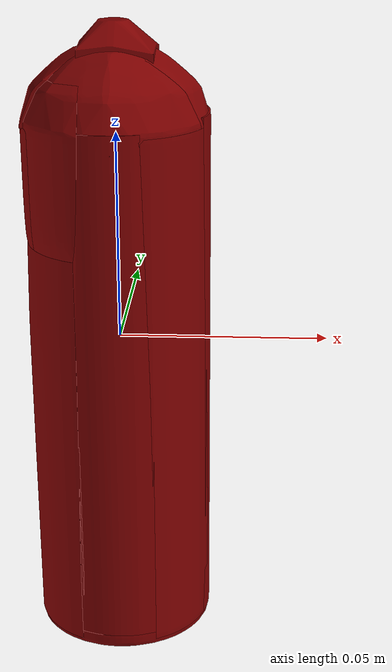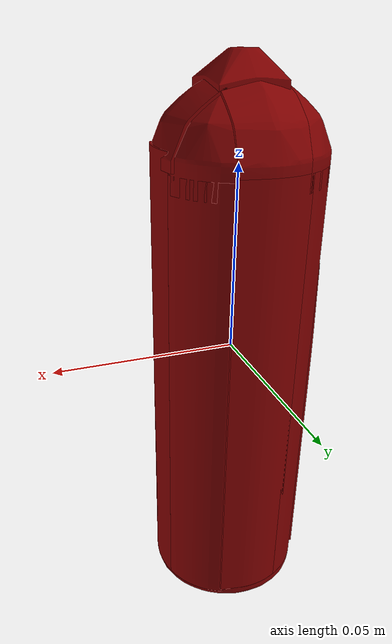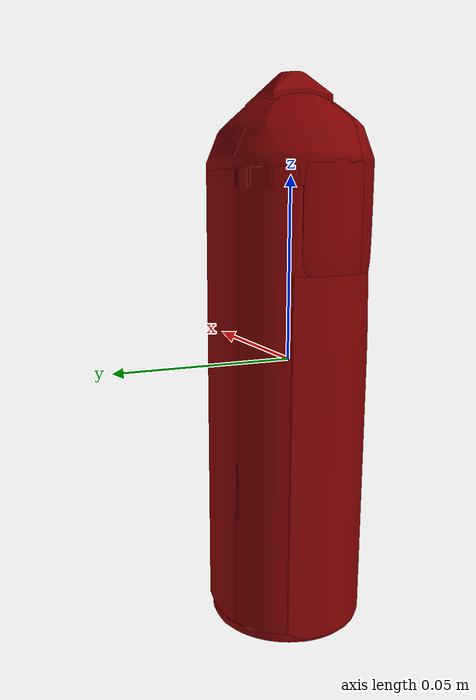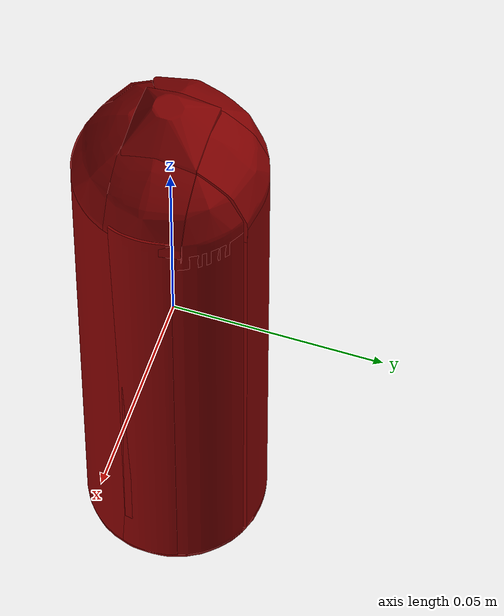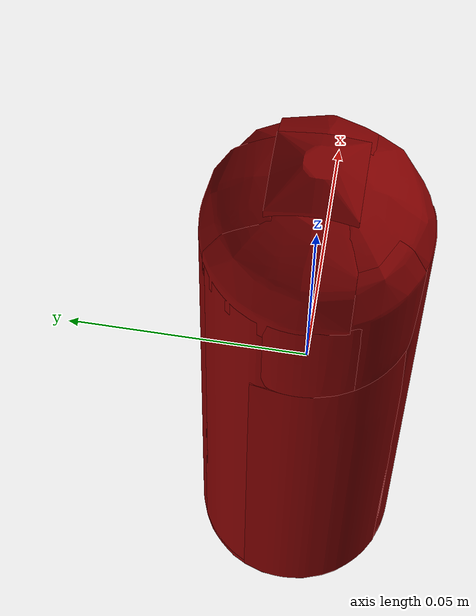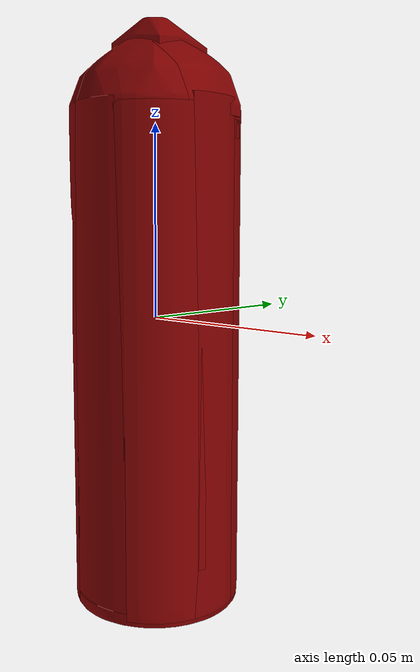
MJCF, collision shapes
<?xml version='1.0' encoding='utf-8'?>
<mujoco model="water_bottle_17">
  <asset>
    <mesh file="visual/model_normalized_0.obj" name="model_normalized_0_vis" scale="0.15000000000000002 0.15000000000000002 0.15000000000000002" refquat="1.0 0.0 0.0 0.0" />
    <texture type="2d" name="image0" file="visual/image0.png" />
    <material name="default.001" texture="image0" specular="0.5" shininess="0.25" />
    <mesh file="collision/collision_mesh_collision_0.obj" name="water_collision_mesh_0" scale="0.15000000000000002 0.15000000000000002 0.15000000000000002" refquat="1.0 0.0 0.0 0.0" />
    <mesh file="collision/collision_mesh_collision_1.obj" name="water_collision_mesh_1" scale="0.15000000000000002 0.15000000000000002 0.15000000000000002" refquat="1.0 0.0 0.0 0.0" />
    <mesh file="collision/collision_mesh_collision_2.obj" name="water_collision_mesh_2" scale="0.15000000000000002 0.15000000000000002 0.15000000000000002" refquat="1.0 0.0 0.0 0.0" />
    <mesh file="collision/collision_mesh_collision_3.obj" name="water_collision_mesh_3" scale="0.15000000000000002 0.15000000000000002 0.15000000000000002" refquat="1.0 0.0 0.0 0.0" />
    <mesh file="collision/collision_mesh_collision_4.obj" name="water_collision_mesh_4" scale="0.15000000000000002 0.15000000000000002 0.15000000000000002" refquat="1.0 0.0 0.0 0.0" />
    <mesh file="collision/collision_mesh_collision_5.obj" name="water_collision_mesh_5" scale="0.15000000000000002 0.15000000000000002 0.15000000000000002" refquat="1.0 0.0 0.0 0.0" />
    <mesh file="collision/collision_mesh_collision_6.obj" name="water_collision_mesh_6" scale="0.15000000000000002 0.15000000000000002 0.15000000000000002" refquat="1.0 0.0 0.0 0.0" />
    <mesh file="collision/collision_mesh_collision_7.obj" name="water_collision_mesh_7" scale="0.15000000000000002 0.15000000000000002 0.15000000000000002" refquat="1.0 0.0 0.0 0.0" />
    <mesh file="collision/collision_mesh_collision_8.obj" name="water_collision_mesh_8" scale="0.15000000000000002 0.15000000000000002 0.15000000000000002" refquat="1.0 0.0 0.0 0.0" />
    <mesh file="collision/collision_mesh_collision_9.obj" name="water_collision_mesh_9" scale="0.15000000000000002 0.15000000000000002 0.15000000000000002" refquat="1.0 0.0 0.0 0.0" />
    <mesh file="collision/collision_mesh_collision_10.obj" name="water_collision_mesh_10" scale="0.15000000000000002 0.15000000000000002 0.15000000000000002" refquat="1.0 0.0 0.0 0.0" />
    <mesh file="collision/collision_mesh_collision_11.obj" name="water_collision_mesh_11" scale="0.15000000000000002 0.15000000000000002 0.15000000000000002" refquat="1.0 0.0 0.0 0.0" />
    <mesh file="collision/collision_mesh_collision_12.obj" name="water_collision_mesh_12" scale="0.15000000000000002 0.15000000000000002 0.15000000000000002" refquat="1.0 0.0 0.0 0.0" />
    <mesh file="collision/collision_mesh_collision_13.obj" name="water_collision_mesh_13" scale="0.15000000000000002 0.15000000000000002 0.15000000000000002" refquat="1.0 0.0 0.0 0.0" />
    <mesh file="collision/collision_mesh_collision_14.obj" name="water_collision_mesh_14" scale="0.15000000000000002 0.15000000000000002 0.15000000000000002" refquat="1.0 0.0 0.0 0.0" />
    <mesh file="collision/collision_mesh_collision_15.obj" name="water_collision_mesh_15" scale="0.15000000000000002 0.15000000000000002 0.15000000000000002" refquat="1.0 0.0 0.0 0.0" />
    </asset>
  <default>
    <default class="region">
      <geom group="1" conaffinity="0" contype="0" rgba="0 1 0 0" />
      </default>
    <default class="collision">
      <geom group="0" rgba="0.5 0 0 0.5" density="1000.0" />
      </default>
    </default>
  <worldbody>
    <body>
      <body name="object">
        <geom solimp="0.998 0.998 0.001" solref="0.001 1" density="100" friction="0.95 0.3 0.1" type="mesh" mesh="model_normalized_0_vis" conaffinity="0" contype="0" group="1" material="default.001" />
        <geom class="region" name="reg_bbox" type="box" pos="-0.0005648129999999989 0.0005648062500000002 -4.057575000000757e-05" size="0.019807615500000004 0.020937232500000003 0.07495942425" />
        <geom mesh="water_collision_mesh_0" type="mesh" class="collision" />
        <geom mesh="water_collision_mesh_1" type="mesh" class="collision" />
        <geom mesh="water_collision_mesh_2" type="mesh" class="collision" />
        <geom mesh="water_collision_mesh_3" type="mesh" class="collision" />
        <geom mesh="water_collision_mesh_4" type="mesh" class="collision" />
        <geom mesh="water_collision_mesh_5" type="mesh" class="collision" />
        <geom mesh="water_collision_mesh_6" type="mesh" class="collision" />
        <geom mesh="water_collision_mesh_7" type="mesh" class="collision" />
        <geom mesh="water_collision_mesh_8" type="mesh" class="collision" />
        <geom mesh="water_collision_mesh_9" type="mesh" class="collision" />
        <geom mesh="water_collision_mesh_10" type="mesh" class="collision" />
        <geom mesh="water_collision_mesh_11" type="mesh" class="collision" />
        <geom mesh="water_collision_mesh_12" type="mesh" class="collision" />
        <geom mesh="water_collision_mesh_13" type="mesh" class="collision" />
        <geom mesh="water_collision_mesh_14" type="mesh" class="collision" />
        <geom mesh="water_collision_mesh_15" type="mesh" class="collision" />
        </body>
      </body>
    </worldbody>
  </mujoco>
